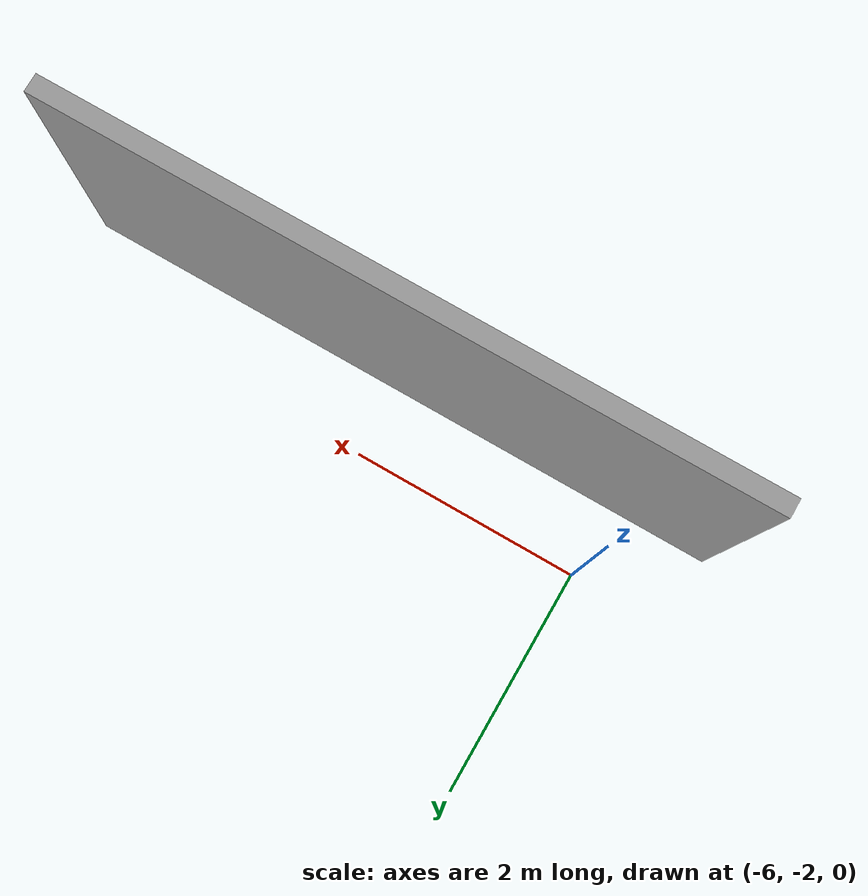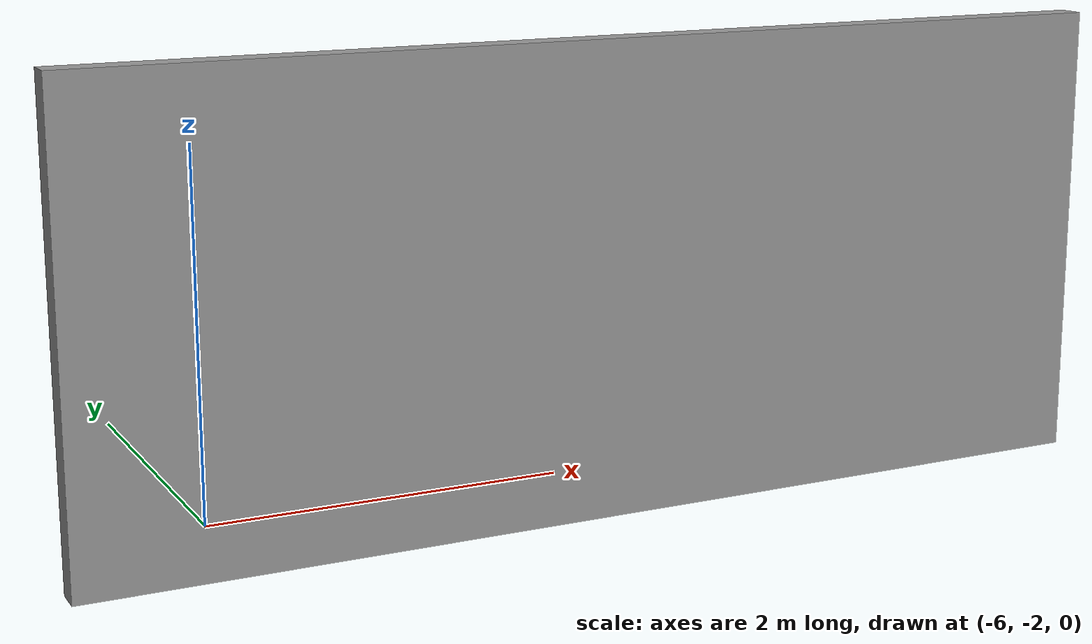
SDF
<?xml version='1.0'?>
<sdf version='1.6'>
  <model name='wall'>
    <pose frame=''>-3.14877 -4.56357 0 0 -0 0</pose>
    <link name='Wall_0'>
      <collision name='Wall_0_Collision'>
        <geometry>
          <box>
            <size>5.75 0.15 2.5</size>
          </box>
        </geometry>
        <pose frame=''>0 0 1.25 0 -0 0</pose>
      </collision>
      <visual name='Wall_0_Visual'>
        <pose frame=''>0 0 1.25 0 -0 0</pose>
        <geometry>
          <box>
            <size>5.75 0.15 2.5</size>
          </box>
        </geometry>
        <material>
          <script>
            <uri>file://media/materials/scripts/gazebo.material</uri>
            <name>Gazebo/Grey</name>
          </script>
          <ambient>1 1 1 1</ambient>
        </material>
      </visual>
      <pose frame=''>-0.851226 1.85357 0 0 -0 0</pose>
    </link>
    <static>1</static>
  </model>
</sdf>
